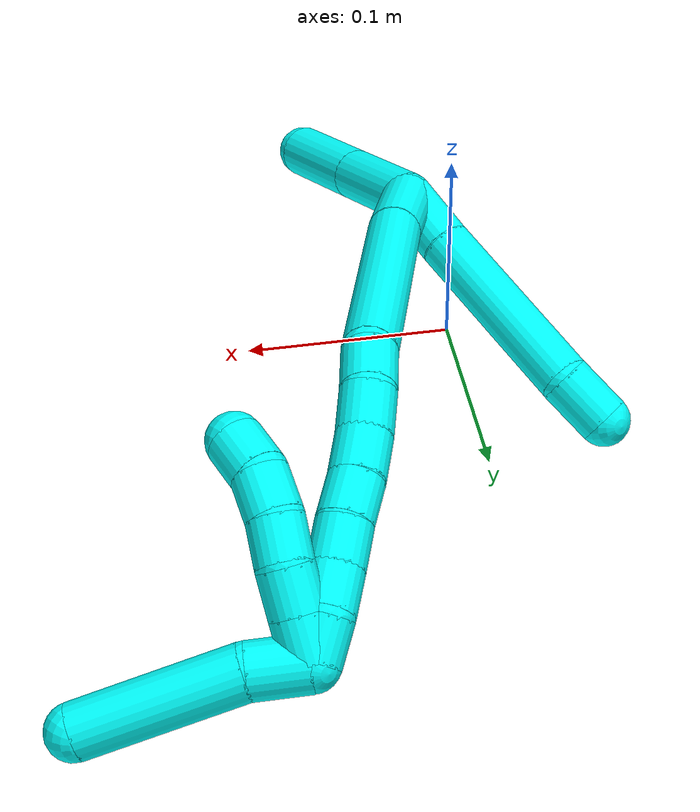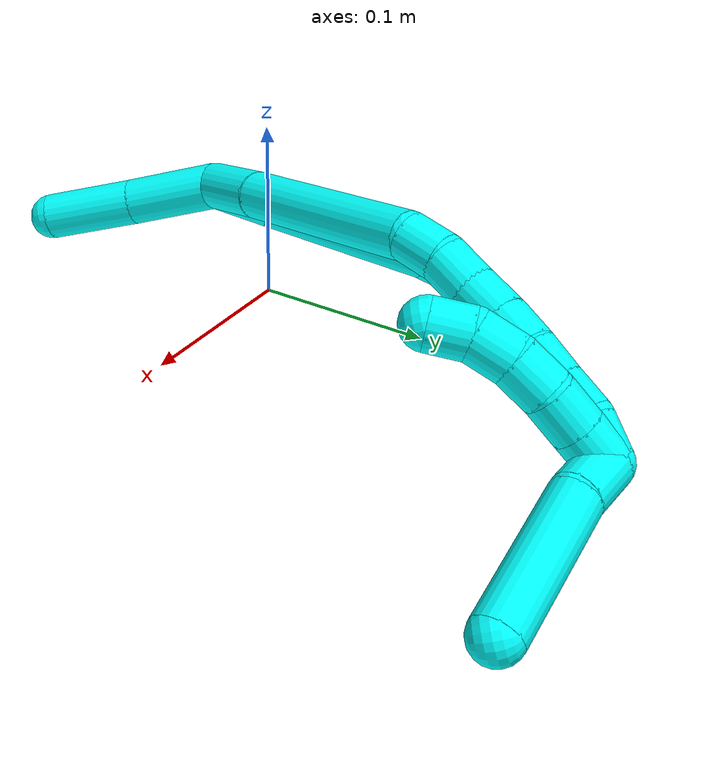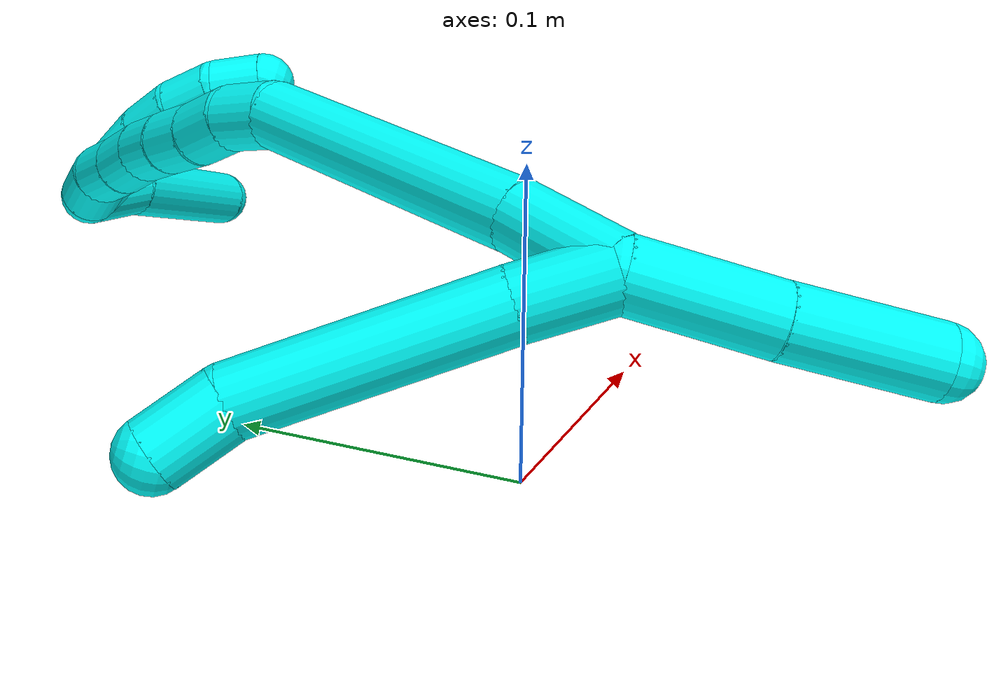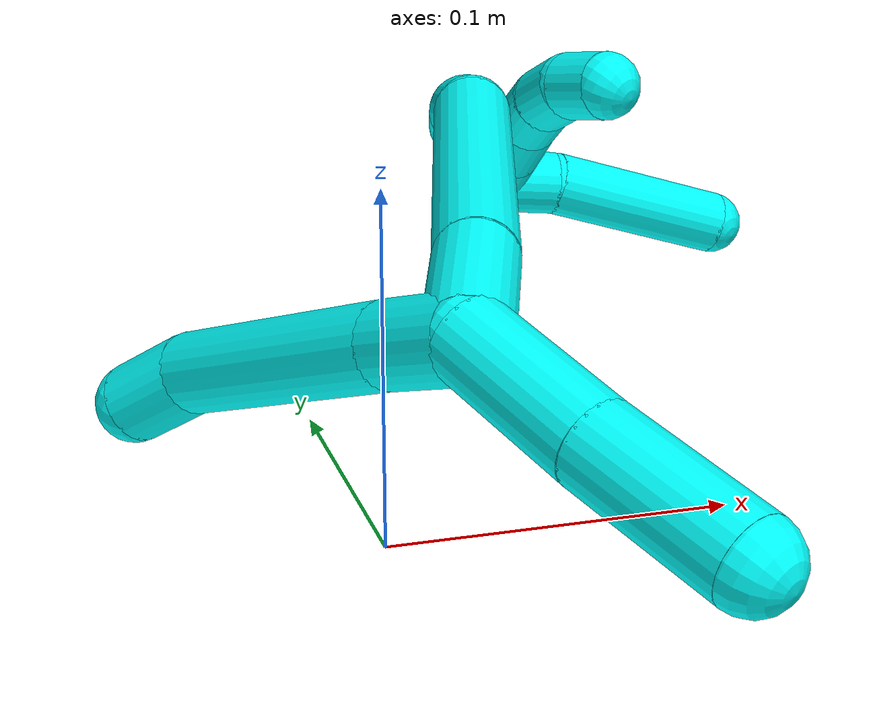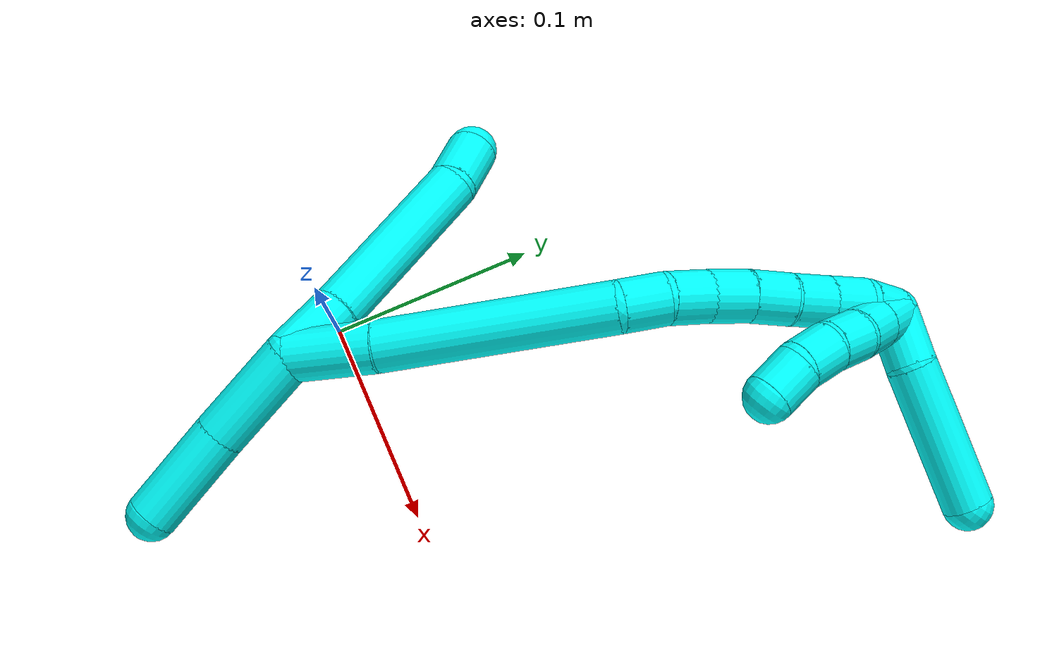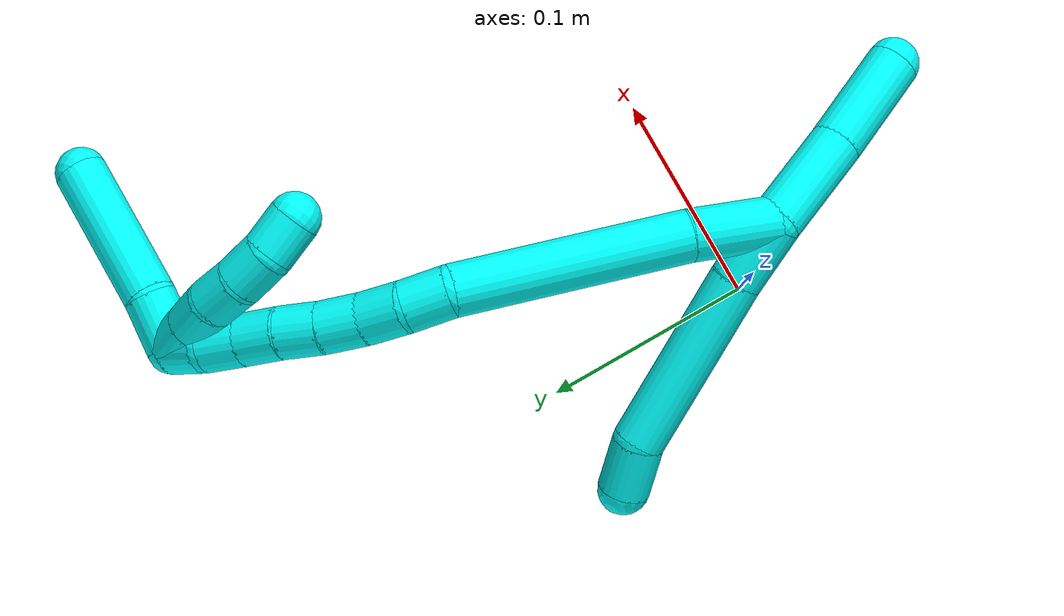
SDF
<sdf version="1.7">
 <world name="default">
  <model name="3">
   <static>0</static>
   <link name="3">
    <collision name="collision-cylinder-e_1_2_8">
     <pose>-0.004718 0.008103 0.013267 -0.548282 -0.294663 0.083422</pose>
     <geometry><cylinder><radius>0.0125</radius><length>0.032491</length></cylinder></geometry>
     <surface>
      <friction><ode><mu>1.16</mu><mu2>1.16</mu2><slip1>0</slip1><slip2>0</slip2></ode></friction>
      <contact><ode><kp>1e+06</kp><kd>1</kd><max_vel>0</max_vel><min_depth>0.001</min_depth></ode></contact>
     </surface>
    </collision>
    <visual name="visual-cylinder-e_1_2_8">
     <pose>-0.004718 0.008103 0.013267 -0.548282 -0.294663 0.083422</pose>
     <geometry><cylinder><radius>0.0125</radius><length>0.032491</length></cylinder></geometry>
     <material><ambient>0.003922 1 0.996078 1</ambient></material>
    </visual>
    <collision name="collision-cylinder-e_2_8_9">
     <pose>-0.025308 0.038003 0.062976 -0.539063 -0.357695 0.099799</pose>
     <geometry><cylinder><radius>0.0125</radius><length>0.090667</length></cylinder></geometry>
     <surface>
      <friction><ode><mu>1.16</mu><mu2>1.16</mu2><slip1>0</slip1><slip2>0</slip2></ode></friction>
      <contact><ode><kp>1e+06</kp><kd>1</kd><max_vel>0</max_vel><min_depth>0.001</min_depth></ode></contact>
     </surface>
    </collision>
    <visual name="visual-cylinder-e_2_8_9">
     <pose>-0.025308 0.038003 0.062976 -0.539063 -0.357695 0.099799</pose>
     <geometry><cylinder><radius>0.0125</radius><length>0.090667</length></cylinder></geometry>
     <material><ambient>0.003922 1 0.996078 1</ambient></material>
    </visual>
    <collision name="collision-cylinder-e_3_9_6">
     <pose>-0.049298 0.066382 0.10784 -0.66327 -0.649581 0.230866</pose>
     <geometry><cylinder><radius>0.0125</radius><length>0.026842</length></cylinder></geometry>
     <surface>
      <friction><ode><mu>1.16</mu><mu2>1.16</mu2><slip1>0</slip1><slip2>0</slip2></ode></friction>
      <contact><ode><kp>1e+06</kp><kd>1</kd><max_vel>0</max_vel><min_depth>0.001</min_depth></ode></contact>
     </surface>
    </collision>
    <visual name="visual-cylinder-e_3_9_6">
     <pose>-0.049298 0.066382 0.10784 -0.66327 -0.649581 0.230866</pose>
     <geometry><cylinder><radius>0.0125</radius><length>0.026842</length></cylinder></geometry>
     <material><ambient>0.003922 1 0.996078 1</ambient></material>
    </visual>
    <collision name="collision-cylinder-e_1_2_10">
     <pose>-0.001446 -0.001677 -0.024765 3.07399 -0.05821 -1.42164</pose>
     <geometry><cylinder><radius>0.0125</radius><length>0.049727</length></cylinder></geometry>
     <surface>
      <friction><ode><mu>1.16</mu><mu2>1.16</mu2><slip1>0</slip1><slip2>0</slip2></ode></friction>
      <contact><ode><kp>1e+06</kp><kd>1</kd><max_vel>0</max_vel><min_depth>0.001</min_depth></ode></contact>
     </surface>
    </collision>
    <visual name="visual-cylinder-e_1_2_10">
     <pose>-0.001446 -0.001677 -0.024765 3.07399 -0.05821 -1.42164</pose>
     <geometry><cylinder><radius>0.0125</radius><length>0.049727</length></cylinder></geometry>
     <material><ambient>0.003922 1 0.996078 1</ambient></material>
    </visual>
    <collision name="collision-cylinder-e_2_10_5">
     <pose>-0.003276 -0.005232 -0.074593 3.06678 -0.015221 -0.401247</pose>
     <geometry><cylinder><radius>0.0125</radius><length>0.050273</length></cylinder></geometry>
     <surface>
      <friction><ode><mu>1.16</mu><mu2>1.16</mu2><slip1>0</slip1><slip2>0</slip2></ode></friction>
      <contact><ode><kp>1e+06</kp><kd>1</kd><max_vel>0</max_vel><min_depth>0.001</min_depth></ode></contact>
     </surface>
    </collision>
    <visual name="visual-cylinder-e_2_10_5">
     <pose>-0.003276 -0.005232 -0.074593 3.06678 -0.015221 -0.401247</pose>
     <geometry><cylinder><radius>0.0125</radius><length>0.050273</length></cylinder></geometry>
     <material><ambient>0.003922 1 0.996078 1</ambient></material>
    </visual>
    <collision name="collision-cylinder-e_1_2_11">
     <pose>0.01265 0.008187 0.014567 -0.512035 0.647977 -0.17536</pose>
     <geometry><cylinder><radius>0.0125</radius><length>0.041917</length></cylinder></geometry>
     <surface>
      <friction><ode><mu>1.16</mu><mu2>1.16</mu2><slip1>0</slip1><slip2>0</slip2></ode></friction>
      <contact><ode><kp>1e+06</kp><kd>1</kd><max_vel>0</max_vel><min_depth>0.001</min_depth></ode></contact>
     </surface>
    </collision>
    <visual name="visual-cylinder-e_1_2_11">
     <pose>0.01265 0.008187 0.014567 -0.512035 0.647977 -0.17536</pose>
     <geometry><cylinder><radius>0.0125</radius><length>0.041917</length></cylinder></geometry>
     <material><ambient>0.003922 1 0.996078 1</ambient></material>
    </visual>
    <collision name="collision-cylinder-e_2_11_12">
     <pose>0.05531 0.040952 0.070416 -0.53701 0.558336 -0.157419</pose>
     <geometry><cylinder><radius>0.0125</radius><length>0.113293</length></cylinder></geometry>
     <surface>
      <friction><ode><mu>1.16</mu><mu2>1.16</mu2><slip1>0</slip1><slip2>0</slip2></ode></friction>
      <contact><ode><kp>1e+06</kp><kd>1</kd><max_vel>0</max_vel><min_depth>0.001</min_depth></ode></contact>
     </surface>
    </collision>
    <visual name="visual-cylinder-e_2_11_12">
     <pose>0.05531 0.040952 0.070416 -0.53701 0.558336 -0.157419</pose>
     <geometry><cylinder><radius>0.0125</radius><length>0.113293</length></cylinder></geometry>
     <material><ambient>0.003922 1 0.996078 1</ambient></material>
    </visual>
    <collision name="collision-cylinder-e_3_12_13">
     <pose>0.088564 0.072886 0.119078 -0.783691 0.301761 -0.125482</pose>
     <geometry><cylinder><radius>0.0125</radius><length>0.021826</length></cylinder></geometry>
     <surface>
      <friction><ode><mu>1.16</mu><mu2>1.16</mu2><slip1>0</slip1><slip2>0</slip2></ode></friction>
      <contact><ode><kp>1e+06</kp><kd>1</kd><max_vel>0</max_vel><min_depth>0.001</min_depth></ode></contact>
     </surface>
    </collision>
    <visual name="visual-cylinder-e_3_12_13">
     <pose>0.088564 0.072886 0.119078 -0.783691 0.301761 -0.125482</pose>
     <geometry><cylinder><radius>0.0125</radius><length>0.021826</length></cylinder></geometry>
     <material><ambient>0.003922 1 0.996078 1</ambient></material>
    </visual>
    <collision name="collision-cylinder-e_4_13_14">
     <pose>0.093844 0.089046 0.131875 -1.01925 0.194542 -0.10896</pose>
     <geometry><cylinder><radius>0.0125</radius><length>0.021072</length></cylinder></geometry>
     <surface>
      <friction><ode><mu>1.16</mu><mu2>1.16</mu2><slip1>0</slip1><slip2>0</slip2></ode></friction>
      <contact><ode><kp>1e+06</kp><kd>1</kd><max_vel>0</max_vel><min_depth>0.001</min_depth></ode></contact>
     </surface>
    </collision>
    <visual name="visual-cylinder-e_4_13_14">
     <pose>0.093844 0.089046 0.131875 -1.01925 0.194542 -0.10896</pose>
     <geometry><cylinder><radius>0.0125</radius><length>0.021072</length></cylinder></geometry>
     <material><ambient>0.003922 1 0.996078 1</ambient></material>
    </visual>
    <collision name="collision-cylinder-e_5_14_15">
     <pose>0.099098 0.106212 0.14281 -0.987495 0.310747 -0.168209</pose>
     <geometry><cylinder><radius>0.0125</radius><length>0.021045</length></cylinder></geometry>
     <surface>
      <friction><ode><mu>1.16</mu><mu2>1.16</mu2><slip1>0</slip1><slip2>0</slip2></ode></friction>
      <contact><ode><kp>1e+06</kp><kd>1</kd><max_vel>0</max_vel><min_depth>0.001</min_depth></ode></contact>
     </surface>
    </collision>
    <visual name="visual-cylinder-e_5_14_15">
     <pose>0.099098 0.106212 0.14281 -0.987495 0.310747 -0.168209</pose>
     <geometry><cylinder><radius>0.0125</radius><length>0.021045</length></cylinder></geometry>
     <material><ambient>0.003922 1 0.996078 1</ambient></material>
    </visual>
    <collision name="collision-cylinder-e_6_15_16">
     <pose>0.105936 0.122964 0.153048 -1.05842 0.359791 -0.211928</pose>
     <geometry><cylinder><radius>0.0125</radius><length>0.02057</length></cylinder></geometry>
     <surface>
      <friction><ode><mu>1.16</mu><mu2>1.16</mu2><slip1>0</slip1><slip2>0</slip2></ode></friction>
      <contact><ode><kp>1e+06</kp><kd>1</kd><max_vel>0</max_vel><min_depth>0.001</min_depth></ode></contact>
     </surface>
    </collision>
    <visual name="visual-cylinder-e_6_15_16">
     <pose>0.105936 0.122964 0.153048 -1.05842 0.359791 -0.211928</pose>
     <geometry><cylinder><radius>0.0125</radius><length>0.02057</length></cylinder></geometry>
     <material><ambient>0.003922 1 0.996078 1</ambient></material>
    </visual>
    <collision name="collision-cylinder-e_7_16_17">
     <pose>0.111977 0.140113 0.162109 -1.11052 0.242589 -0.150949</pose>
     <geometry><cylinder><radius>0.0125</radius><length>0.020142</length></cylinder></geometry>
     <surface>
      <friction><ode><mu>1.16</mu><mu2>1.16</mu2><slip1>0</slip1><slip2>0</slip2></ode></friction>
      <contact><ode><kp>1e+06</kp><kd>1</kd><max_vel>0</max_vel><min_depth>0.001</min_depth></ode></contact>
     </surface>
    </collision>
    <visual name="visual-cylinder-e_7_16_17">
     <pose>0.111977 0.140113 0.162109 -1.11052 0.242589 -0.150949</pose>
     <geometry><cylinder><radius>0.0125</radius><length>0.020142</length></cylinder></geometry>
     <material><ambient>0.003922 1 0.996078 1</ambient></material>
    </visual>
    <collision name="collision-cylinder-e_8_17_18">
     <pose>0.117259 0.157319 0.171016 -1.07541 0.289793 -0.173591</pose>
     <geometry><cylinder><radius>0.0125</radius><length>0.020039</length></cylinder></geometry>
     <surface>
      <friction><ode><mu>1.16</mu><mu2>1.16</mu2><slip1>0</slip1><slip2>0</slip2></ode></friction>
      <contact><ode><kp>1e+06</kp><kd>1</kd><max_vel>0</max_vel><min_depth>0.001</min_depth></ode></contact>
     </surface>
    </collision>
    <visual name="visual-cylinder-e_8_17_18">
     <pose>0.117259 0.157319 0.171016 -1.07541 0.289793 -0.173591</pose>
     <geometry><cylinder><radius>0.0125</radius><length>0.020039</length></cylinder></geometry>
     <material><ambient>0.003922 1 0.996078 1</ambient></material>
    </visual>
    <collision name="collision-cylinder-e_9_18_1">
     <pose>0.121717 0.175464 0.177672 -1.35836 0.159386 -0.128768</pose>
     <geometry><cylinder><radius>0.0125</radius><length>0.020096</length></cylinder></geometry>
     <surface>
      <friction><ode><mu>1.16</mu><mu2>1.16</mu2><slip1>0</slip1><slip2>0</slip2></ode></friction>
      <contact><ode><kp>1e+06</kp><kd>1</kd><max_vel>0</max_vel><min_depth>0.001</min_depth></ode></contact>
     </surface>
    </collision>
    <visual name="visual-cylinder-e_9_18_1">
     <pose>0.121717 0.175464 0.177672 -1.35836 0.159386 -0.128768</pose>
     <geometry><cylinder><radius>0.0125</radius><length>0.020096</length></cylinder></geometry>
     <material><ambient>0.003922 1 0.996078 1</ambient></material>
    </visual>
    <collision name="collision-cylinder-e_1_1_19">
     <pose>0.133181 0.190371 0.172708 -2.50565 0.844312 -1.8768</pose>
     <geometry><cylinder><radius>0.0125</radius><length>0.026406</length></cylinder></geometry>
     <surface>
      <friction><ode><mu>1.16</mu><mu2>1.16</mu2><slip1>0</slip1><slip2>0</slip2></ode></friction>
      <contact><ode><kp>1e+06</kp><kd>1</kd><max_vel>0</max_vel><min_depth>0.001</min_depth></ode></contact>
     </surface>
    </collision>
    <visual name="visual-cylinder-e_1_1_19">
     <pose>0.133181 0.190371 0.172708 -2.50565 0.844312 -1.8768</pose>
     <geometry><cylinder><radius>0.0125</radius><length>0.026406</length></cylinder></geometry>
     <material><ambient>0.003922 1 0.996078 1</ambient></material>
    </visual>
    <collision name="collision-cylinder-e_2_19_4">
     <pose>0.166138 0.217323 0.146993 -2.27999 0.678253 -1.30927</pose>
     <geometry><cylinder><radius>0.0125</radius><length>0.073594</length></cylinder></geometry>
     <surface>
      <friction><ode><mu>1.16</mu><mu2>1.16</mu2><slip1>0</slip1><slip2>0</slip2></ode></friction>
      <contact><ode><kp>1e+06</kp><kd>1</kd><max_vel>0</max_vel><min_depth>0.001</min_depth></ode></contact>
     </surface>
    </collision>
    <visual name="visual-cylinder-e_2_19_4">
     <pose>0.166138 0.217323 0.146993 -2.27999 0.678253 -1.30927</pose>
     <geometry><cylinder><radius>0.0125</radius><length>0.073594</length></cylinder></geometry>
     <material><ambient>0.003922 1 0.996078 1</ambient></material>
    </visual>
    <collision name="collision-cylinder-e_1_1_20">
     <pose>0.12679 0.176762 0.1756 2.03105 0.355211 0.563287</pose>
     <geometry><cylinder><radius>0.0125</radius><length>0.02</length></cylinder></geometry>
     <surface>
      <friction><ode><mu>1.16</mu><mu2>1.16</mu2><slip1>0</slip1><slip2>0</slip2></ode></friction>
      <contact><ode><kp>1e+06</kp><kd>1</kd><max_vel>0</max_vel><min_depth>0.001</min_depth></ode></contact>
     </surface>
    </collision>
    <visual name="visual-cylinder-e_1_1_20">
     <pose>0.12679 0.176762 0.1756 2.03105 0.355211 0.563287</pose>
     <geometry><cylinder><radius>0.0125</radius><length>0.02</length></cylinder></geometry>
     <material><ambient>0.003922 1 0.996078 1</ambient></material>
    </visual>
    <collision name="collision-cylinder-e_2_20_21">
     <pose>0.133729 0.159936 0.167308 2.02628 0.353421 0.557712</pose>
     <geometry><cylinder><radius>0.0125</radius><length>0.02</length></cylinder></geometry>
     <surface>
      <friction><ode><mu>1.16</mu><mu2>1.16</mu2><slip1>0</slip1><slip2>0</slip2></ode></friction>
      <contact><ode><kp>1e+06</kp><kd>1</kd><max_vel>0</max_vel><min_depth>0.001</min_depth></ode></contact>
     </surface>
    </collision>
    <visual name="visual-cylinder-e_2_20_21">
     <pose>0.133729 0.159936 0.167308 2.02628 0.353421 0.557712</pose>
     <geometry><cylinder><radius>0.0125</radius><length>0.02</length></cylinder></geometry>
     <material><ambient>0.003922 1 0.996078 1</ambient></material>
    </visual>
    <collision name="collision-cylinder-e_3_21_22">
     <pose>0.138873 0.14324 0.157818 2.14606 0.169105 0.309443</pose>
     <geometry><cylinder><radius>0.0125</radius><length>0.02</length></cylinder></geometry>
     <surface>
      <friction><ode><mu>1.16</mu><mu2>1.16</mu2><slip1>0</slip1><slip2>0</slip2></ode></friction>
      <contact><ode><kp>1e+06</kp><kd>1</kd><max_vel>0</max_vel><min_depth>0.001</min_depth></ode></contact>
     </surface>
    </collision>
    <visual name="visual-cylinder-e_3_21_22">
     <pose>0.138873 0.14324 0.157818 2.14606 0.169105 0.309443</pose>
     <geometry><cylinder><radius>0.0125</radius><length>0.02</length></cylinder></geometry>
     <material><ambient>0.003922 1 0.996078 1</ambient></material>
    </visual>
    <collision name="collision-cylinder-e_4_22_23">
     <pose>0.14216 0.127991 0.145474 2.3564 0.161153 0.385183</pose>
     <geometry><cylinder><radius>0.0125</radius><length>0.02</length></cylinder></geometry>
     <surface>
      <friction><ode><mu>1.16</mu><mu2>1.16</mu2><slip1>0</slip1><slip2>0</slip2></ode></friction>
      <contact><ode><kp>1e+06</kp><kd>1</kd><max_vel>0</max_vel><min_depth>0.001</min_depth></ode></contact>
     </surface>
    </collision>
    <visual name="visual-cylinder-e_4_22_23">
     <pose>0.14216 0.127991 0.145474 2.3564 0.161153 0.385183</pose>
     <geometry><cylinder><radius>0.0125</radius><length>0.02</length></cylinder></geometry>
     <material><ambient>0.003922 1 0.996078 1</ambient></material>
    </visual>
    <collision name="collision-cylinder-e_5_23_3">
     <pose>0.145473 0.116834 0.12957 2.70359 0.171639 0.737693</pose>
     <geometry><cylinder><radius>0.0125</radius><length>0.02</length></cylinder></geometry>
     <surface>
      <friction><ode><mu>1.16</mu><mu2>1.16</mu2><slip1>0</slip1><slip2>0</slip2></ode></friction>
      <contact><ode><kp>1e+06</kp><kd>1</kd><max_vel>0</max_vel><min_depth>0.001</min_depth></ode></contact>
     </surface>
    </collision>
    <visual name="visual-cylinder-e_5_23_3">
     <pose>0.145473 0.116834 0.12957 2.70359 0.171639 0.737693</pose>
     <geometry><cylinder><radius>0.0125</radius><length>0.02</length></cylinder></geometry>
     <material><ambient>0.003922 1 0.996078 1</ambient></material>
    </visual>
    <collision name="collision-sphere-3">
     <pose>0.147181 0.112655 0.120647 0 -0 0</pose>
     <geometry><sphere><radius>0.0125</radius></sphere></geometry>
     <surface>
      <friction><ode><mu>1.16</mu><mu2>1.16</mu2><slip1>0</slip1><slip2>0</slip2></ode></friction>
      <contact><ode><kp>1e+06</kp><kd>1</kd><max_vel>0</max_vel><min_depth>0.001</min_depth></ode></contact>
     </surface>
    </collision>
    <visual name="visual-sphere-3">
     <pose>0.147181 0.112655 0.120647 0 -0 0</pose>
     <geometry><sphere><radius>0.0125</radius></sphere></geometry>
     <material><ambient>0.003922 1 0.996078 1</ambient></material>
    </visual>
    <collision name="collision-sphere-23">
     <pose>0.143765 0.121013 0.138493 0 -0 0</pose>
     <geometry><sphere><radius>0.0125</radius></sphere></geometry>
     <surface>
      <friction><ode><mu>1.16</mu><mu2>1.16</mu2><slip1>0</slip1><slip2>0</slip2></ode></friction>
      <contact><ode><kp>1e+06</kp><kd>1</kd><max_vel>0</max_vel><min_depth>0.001</min_depth></ode></contact>
     </surface>
    </collision>
    <visual name="visual-sphere-23">
     <pose>0.143765 0.121013 0.138493 0 -0 0</pose>
     <geometry><sphere><radius>0.0125</radius></sphere></geometry>
     <material><ambient>0.003922 1 0.996078 1</ambient></material>
    </visual>
    <collision name="collision-sphere-22">
     <pose>0.140556 0.134969 0.152455 0 -0 0</pose>
     <geometry><sphere><radius>0.0125</radius></sphere></geometry>
     <surface>
      <friction><ode><mu>1.16</mu><mu2>1.16</mu2><slip1>0</slip1><slip2>0</slip2></ode></friction>
      <contact><ode><kp>1e+06</kp><kd>1</kd><max_vel>0</max_vel><min_depth>0.001</min_depth></ode></contact>
     </surface>
    </collision>
    <visual name="visual-sphere-22">
     <pose>0.140556 0.134969 0.152455 0 -0 0</pose>
     <geometry><sphere><radius>0.0125</radius></sphere></geometry>
     <material><ambient>0.003922 1 0.996078 1</ambient></material>
    </visual>
    <collision name="collision-sphere-21">
     <pose>0.13719 0.151511 0.163181 0 -0 0</pose>
     <geometry><sphere><radius>0.0125</radius></sphere></geometry>
     <surface>
      <friction><ode><mu>1.16</mu><mu2>1.16</mu2><slip1>0</slip1><slip2>0</slip2></ode></friction>
      <contact><ode><kp>1e+06</kp><kd>1</kd><max_vel>0</max_vel><min_depth>0.001</min_depth></ode></contact>
     </surface>
    </collision>
    <visual name="visual-sphere-21">
     <pose>0.13719 0.151511 0.163181 0 -0 0</pose>
     <geometry><sphere><radius>0.0125</radius></sphere></geometry>
     <material><ambient>0.003922 1 0.996078 1</ambient></material>
    </visual>
    <collision name="collision-sphere-20">
     <pose>0.130267 0.168361 0.171435 0 -0 0</pose>
     <geometry><sphere><radius>0.0125</radius></sphere></geometry>
     <surface>
      <friction><ode><mu>1.16</mu><mu2>1.16</mu2><slip1>0</slip1><slip2>0</slip2></ode></friction>
      <contact><ode><kp>1e+06</kp><kd>1</kd><max_vel>0</max_vel><min_depth>0.001</min_depth></ode></contact>
     </surface>
    </collision>
    <visual name="visual-sphere-20">
     <pose>0.130267 0.168361 0.171435 0 -0 0</pose>
     <geometry><sphere><radius>0.0125</radius></sphere></geometry>
     <material><ambient>0.003922 1 0.996078 1</ambient></material>
    </visual>
    <collision name="collision-sphere-4">
     <pose>0.189226 0.239067 0.128334 0 -0 0</pose>
     <geometry><sphere><radius>0.0125</radius></sphere></geometry>
     <surface>
      <friction><ode><mu>1.16</mu><mu2>1.16</mu2><slip1>0</slip1><slip2>0</slip2></ode></friction>
      <contact><ode><kp>1e+06</kp><kd>1</kd><max_vel>0</max_vel><min_depth>0.001</min_depth></ode></contact>
     </surface>
    </collision>
    <visual name="visual-sphere-4">
     <pose>0.189226 0.239067 0.128334 0 -0 0</pose>
     <geometry><sphere><radius>0.0125</radius></sphere></geometry>
     <material><ambient>0.003922 1 0.996078 1</ambient></material>
    </visual>
    <collision name="collision-sphere-5">
     <pose>-0.003658 -0.007111 -0.099656 0 -0 0</pose>
     <geometry><sphere><radius>0.0125</radius></sphere></geometry>
     <surface>
      <friction><ode><mu>1.16</mu><mu2>1.16</mu2><slip1>0</slip1><slip2>0</slip2></ode></friction>
      <contact><ode><kp>1e+06</kp><kd>1</kd><max_vel>0</max_vel><min_depth>0.001</min_depth></ode></contact>
     </surface>
    </collision>
    <visual name="visual-sphere-5">
     <pose>-0.003658 -0.007111 -0.099656 0 -0 0</pose>
     <geometry><sphere><radius>0.0125</radius></sphere></geometry>
     <material><ambient>0.003922 1 0.996078 1</ambient></material>
    </visual>
    <collision name="collision-sphere-10">
     <pose>-0.002893 -0.003353 -0.049529 0 -0 0</pose>
     <geometry><sphere><radius>0.0125</radius></sphere></geometry>
     <surface>
      <friction><ode><mu>1.16</mu><mu2>1.16</mu2><slip1>0</slip1><slip2>0</slip2></ode></friction>
      <contact><ode><kp>1e+06</kp><kd>1</kd><max_vel>0</max_vel><min_depth>0.001</min_depth></ode></contact>
     </surface>
    </collision>
    <visual name="visual-sphere-10">
     <pose>-0.002893 -0.003353 -0.049529 0 -0 0</pose>
     <geometry><sphere><radius>0.0125</radius></sphere></geometry>
     <material><ambient>0.003922 1 0.996078 1</ambient></material>
    </visual>
    <collision name="collision-sphere-6">
     <pose>-0.057415 0.072962 0.116262 0 -0 0</pose>
     <geometry><sphere><radius>0.0125</radius></sphere></geometry>
     <surface>
      <friction><ode><mu>1.16</mu><mu2>1.16</mu2><slip1>0</slip1><slip2>0</slip2></ode></friction>
      <contact><ode><kp>1e+06</kp><kd>1</kd><max_vel>0</max_vel><min_depth>0.001</min_depth></ode></contact>
     </surface>
    </collision>
    <visual name="visual-sphere-6">
     <pose>-0.057415 0.072962 0.116262 0 -0 0</pose>
     <geometry><sphere><radius>0.0125</radius></sphere></geometry>
     <material><ambient>0.003922 1 0.996078 1</ambient></material>
    </visual>
    <collision name="collision-sphere-9">
     <pose>-0.04118 0.059802 0.099418 0 -0 0</pose>
     <geometry><sphere><radius>0.0125</radius></sphere></geometry>
     <surface>
      <friction><ode><mu>1.16</mu><mu2>1.16</mu2><slip1>0</slip1><slip2>0</slip2></ode></friction>
      <contact><ode><kp>1e+06</kp><kd>1</kd><max_vel>0</max_vel><min_depth>0.001</min_depth></ode></contact>
     </surface>
    </collision>
    <visual name="visual-sphere-9">
     <pose>-0.04118 0.059802 0.099418 0 -0 0</pose>
     <geometry><sphere><radius>0.0125</radius></sphere></geometry>
     <material><ambient>0.003922 1 0.996078 1</ambient></material>
    </visual>
    <collision name="collision-sphere-2">
     <geometry><sphere><radius>0.0125</radius></sphere></geometry>
     <surface>
      <friction><ode><mu>1.16</mu><mu2>1.16</mu2><slip1>0</slip1><slip2>0</slip2></ode></friction>
      <contact><ode><kp>1e+06</kp><kd>1</kd><max_vel>0</max_vel><min_depth>0.001</min_depth></ode></contact>
     </surface>
    </collision>
    <visual name="visual-sphere-2">
     <geometry><sphere><radius>0.0125</radius></sphere></geometry>
     <material><ambient>0.003922 1 0.996078 1</ambient></material>
    </visual>
    <collision name="collision-sphere-19">
     <pose>0.143051 0.19558 0.165653 0 -0 0</pose>
     <geometry><sphere><radius>0.0125</radius></sphere></geometry>
     <surface>
      <friction><ode><mu>1.16</mu><mu2>1.16</mu2><slip1>0</slip1><slip2>0</slip2></ode></friction>
      <contact><ode><kp>1e+06</kp><kd>1</kd><max_vel>0</max_vel><min_depth>0.001</min_depth></ode></contact>
     </surface>
    </collision>
    <visual name="visual-sphere-19">
     <pose>0.143051 0.19558 0.165653 0 -0 0</pose>
     <geometry><sphere><radius>0.0125</radius></sphere></geometry>
     <material><ambient>0.003922 1 0.996078 1</ambient></material>
    </visual>
    <collision name="collision-sphere-8">
     <pose>-0.009436 0.016205 0.026534 0 -0 0</pose>
     <geometry><sphere><radius>0.0125</radius></sphere></geometry>
     <surface>
      <friction><ode><mu>1.16</mu><mu2>1.16</mu2><slip1>0</slip1><slip2>0</slip2></ode></friction>
      <contact><ode><kp>1e+06</kp><kd>1</kd><max_vel>0</max_vel><min_depth>0.001</min_depth></ode></contact>
     </surface>
    </collision>
    <visual name="visual-sphere-8">
     <pose>-0.009436 0.016205 0.026534 0 -0 0</pose>
     <geometry><sphere><radius>0.0125</radius></sphere></geometry>
     <material><ambient>0.003922 1 0.996078 1</ambient></material>
    </visual>
    <collision name="collision-sphere-11">
     <pose>0.0253 0.016375 0.029135 0 -0 0</pose>
     <geometry><sphere><radius>0.0125</radius></sphere></geometry>
     <surface>
      <friction><ode><mu>1.16</mu><mu2>1.16</mu2><slip1>0</slip1><slip2>0</slip2></ode></friction>
      <contact><ode><kp>1e+06</kp><kd>1</kd><max_vel>0</max_vel><min_depth>0.001</min_depth></ode></contact>
     </surface>
    </collision>
    <visual name="visual-sphere-11">
     <pose>0.0253 0.016375 0.029135 0 -0 0</pose>
     <geometry><sphere><radius>0.0125</radius></sphere></geometry>
     <material><ambient>0.003922 1 0.996078 1</ambient></material>
    </visual>
    <collision name="collision-sphere-12">
     <pose>0.08532 0.06553 0.111698 0 -0 0</pose>
     <geometry><sphere><radius>0.0125</radius></sphere></geometry>
     <surface>
      <friction><ode><mu>1.16</mu><mu2>1.16</mu2><slip1>0</slip1><slip2>0</slip2></ode></friction>
      <contact><ode><kp>1e+06</kp><kd>1</kd><max_vel>0</max_vel><min_depth>0.001</min_depth></ode></contact>
     </surface>
    </collision>
    <visual name="visual-sphere-12">
     <pose>0.08532 0.06553 0.111698 0 -0 0</pose>
     <geometry><sphere><radius>0.0125</radius></sphere></geometry>
     <material><ambient>0.003922 1 0.996078 1</ambient></material>
    </visual>
    <collision name="collision-sphere-13">
     <pose>0.091807 0.080241 0.126459 0 -0 0</pose>
     <geometry><sphere><radius>0.0125</radius></sphere></geometry>
     <surface>
      <friction><ode><mu>1.16</mu><mu2>1.16</mu2><slip1>0</slip1><slip2>0</slip2></ode></friction>
      <contact><ode><kp>1e+06</kp><kd>1</kd><max_vel>0</max_vel><min_depth>0.001</min_depth></ode></contact>
     </surface>
    </collision>
    <visual name="visual-sphere-13">
     <pose>0.091807 0.080241 0.126459 0 -0 0</pose>
     <geometry><sphere><radius>0.0125</radius></sphere></geometry>
     <material><ambient>0.003922 1 0.996078 1</ambient></material>
    </visual>
    <collision name="collision-sphere-14">
     <pose>0.09588 0.09785 0.137292 0 -0 0</pose>
     <geometry><sphere><radius>0.0125</radius></sphere></geometry>
     <surface>
      <friction><ode><mu>1.16</mu><mu2>1.16</mu2><slip1>0</slip1><slip2>0</slip2></ode></friction>
      <contact><ode><kp>1e+06</kp><kd>1</kd><max_vel>0</max_vel><min_depth>0.001</min_depth></ode></contact>
     </surface>
    </collision>
    <visual name="visual-sphere-14">
     <pose>0.09588 0.09785 0.137292 0 -0 0</pose>
     <geometry><sphere><radius>0.0125</radius></sphere></geometry>
     <material><ambient>0.003922 1 0.996078 1</ambient></material>
    </visual>
    <collision name="collision-sphere-15">
     <pose>0.102315 0.114574 0.148328 0 -0 0</pose>
     <geometry><sphere><radius>0.0125</radius></sphere></geometry>
     <surface>
      <friction><ode><mu>1.16</mu><mu2>1.16</mu2><slip1>0</slip1><slip2>0</slip2></ode></friction>
      <contact><ode><kp>1e+06</kp><kd>1</kd><max_vel>0</max_vel><min_depth>0.001</min_depth></ode></contact>
     </surface>
    </collision>
    <visual name="visual-sphere-15">
     <pose>0.102315 0.114574 0.148328 0 -0 0</pose>
     <geometry><sphere><radius>0.0125</radius></sphere></geometry>
     <material><ambient>0.003922 1 0.996078 1</ambient></material>
    </visual>
    <collision name="collision-sphere-16">
     <pose>0.109557 0.131354 0.157767 0 -0 0</pose>
     <geometry><sphere><radius>0.0125</radius></sphere></geometry>
     <surface>
      <friction><ode><mu>1.16</mu><mu2>1.16</mu2><slip1>0</slip1><slip2>0</slip2></ode></friction>
      <contact><ode><kp>1e+06</kp><kd>1</kd><max_vel>0</max_vel><min_depth>0.001</min_depth></ode></contact>
     </surface>
    </collision>
    <visual name="visual-sphere-16">
     <pose>0.109557 0.131354 0.157767 0 -0 0</pose>
     <geometry><sphere><radius>0.0125</radius></sphere></geometry>
     <material><ambient>0.003922 1 0.996078 1</ambient></material>
    </visual>
    <collision name="collision-sphere-17">
     <pose>0.114396 0.148872 0.166452 0 -0 0</pose>
     <geometry><sphere><radius>0.0125</radius></sphere></geometry>
     <surface>
      <friction><ode><mu>1.16</mu><mu2>1.16</mu2><slip1>0</slip1><slip2>0</slip2></ode></friction>
      <contact><ode><kp>1e+06</kp><kd>1</kd><max_vel>0</max_vel><min_depth>0.001</min_depth></ode></contact>
     </surface>
    </collision>
    <visual name="visual-sphere-17">
     <pose>0.114396 0.148872 0.166452 0 -0 0</pose>
     <geometry><sphere><radius>0.0125</radius></sphere></geometry>
     <material><ambient>0.003922 1 0.996078 1</ambient></material>
    </visual>
    <collision name="collision-sphere-18">
     <pose>0.120122 0.165767 0.175581 0 -0 0</pose>
     <geometry><sphere><radius>0.0125</radius></sphere></geometry>
     <surface>
      <friction><ode><mu>1.16</mu><mu2>1.16</mu2><slip1>0</slip1><slip2>0</slip2></ode></friction>
      <contact><ode><kp>1e+06</kp><kd>1</kd><max_vel>0</max_vel><min_depth>0.001</min_depth></ode></contact>
     </surface>
    </collision>
    <visual name="visual-sphere-18">
     <pose>0.120122 0.165767 0.175581 0 -0 0</pose>
     <geometry><sphere><radius>0.0125</radius></sphere></geometry>
     <material><ambient>0.003922 1 0.996078 1</ambient></material>
    </visual>
    <collision name="collision-sphere-1">
     <pose>0.123312 0.185162 0.179764 0 -0 0</pose>
     <geometry><sphere><radius>0.0125</radius></sphere></geometry>
     <surface>
      <friction><ode><mu>1.16</mu><mu2>1.16</mu2><slip1>0</slip1><slip2>0</slip2></ode></friction>
      <contact><ode><kp>1e+06</kp><kd>1</kd><max_vel>0</max_vel><min_depth>0.001</min_depth></ode></contact>
     </surface>
    </collision>
    <visual name="visual-sphere-1">
     <pose>0.123312 0.185162 0.179764 0 -0 0</pose>
     <geometry><sphere><radius>0.0125</radius></sphere></geometry>
     <material><ambient>0.003922 1 0.996078 1</ambient></material>
    </visual>
    <inertial>
     <pose>0.063332 0.084501 0.087107 0 -0 0</pose>
     <mass>0.75</mass>
     <inertia>
      <ixx>0.000172</ixx>
      <ixy>0</ixy>
      <ixz>0</ixz>
      <iyy>0.000147</iyy>
      <iyz>0</iyz>
      <izz>-0.000184</izz>
     </inertia>
    </inertial>
   </link>
   <pose>0.016138 -0.02396 0.066028 -1.20371 -0.549203 0.283537</pose>
  </model>
 </world>
</sdf>
